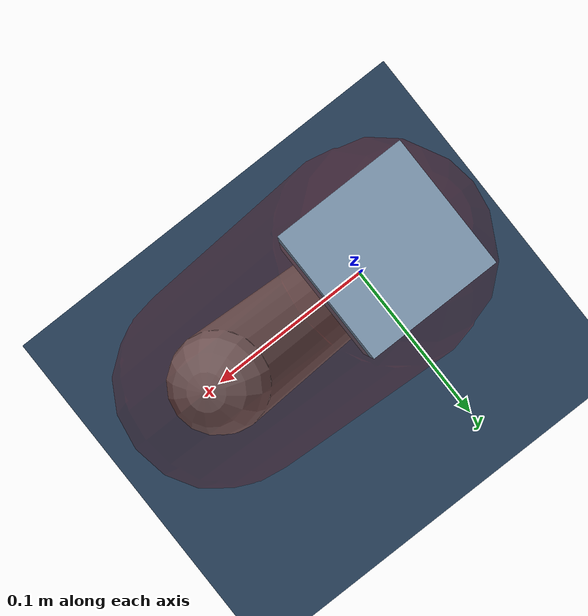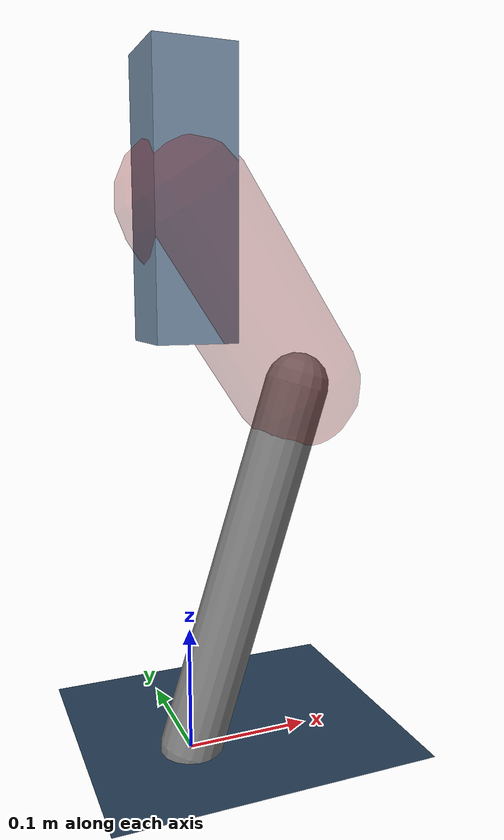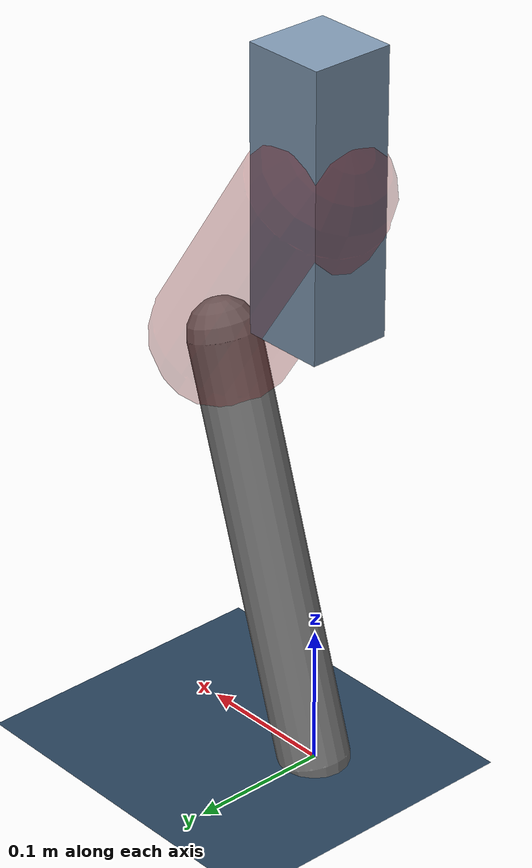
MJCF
<mujoco model="Hopper2D">
	<compiler inertiafromgeom="true" angle="radian" />
	<option timestep="0.001" integrator="implicit" cone="elliptic" solver="Newton" tolerance="1e-10" />

	<default>
		<geom contype="1" conaffinity="1" condim="3" friction="2 0.005 0.0001" solref="0.005 1" />
		<joint limited="true" damping="0.1" />
	</default>

	<asset>
		<texture name="skybox" type="skybox" builtin="gradient" rgb1=".4 .6 .8" rgb2="0 0 0" width="800" height="800" />
		<texture name="grid" type="2d" builtin="checker" rgb1=".1 .2 .3" rgb2=".2 .3 .4" width="300" height="300" mark="edge" markrgb=".2 .3 .4" />
		<material name="ground" texture="grid" texrepeat="1 1" texuniform="true" reflectance="0.1" />
		<material name="leg" rgba="0.5 0.6 0.7 1" />
	</asset>

	<worldbody>

		<geom name="floor" type="plane" size="5 5 0.25" material="ground" />

		<light directional="false" diffuse="0.8 0.8 0.8" specular="0.3 0.3 0.3" pos="0 0 2" dir="0 0 -1" />
		<light mode="targetbodycom" target="base" directional="false" diffuse="0.8 0.8 0.8" specular="0.3 0.3 0.3" pos="0 0 2" dir="0 0 -1" />

		<camera name="fixed" pos="0 -2 1" xyaxes="1 0 0 0 0 1" />
		<camera name="tracking" mode="trackcom" pos="0 -3 1" />

		<body name="root" pos="0 0 0.4248812305965497">
			<joint name="slide_x" type="slide" axis="1 0 0" range="-100 100" />
			<joint name="slide_z" type="slide" axis="0 0 1" range="0 10" />

			<body name="base" pos="0 0 0">
				<geom name="torso" type="box" size="0.03 0.03 0.1" mass="2.508" material="leg" />

				<body name="link1" pos="0 0 0" euler="0 0.981763436570761 0">
					<joint type="hinge" axis="0 -1 0" pos="0 0 0" name="hinge1" limited="true" range="-3.14 3.14" stiffness="0" damping="0.1" />
					<geom name="thigh" type="capsule" fromto="0 0 0 0.16247886599655248 0 0" size="0.05" rgba="0.5 0 0 0.3" mass="0.638249278391726" />

					<body name="link2" pos="0.16247886599655248 0 0" euler="0 0.8910024213495001 0">
						<joint type="hinge" axis="0 -1 0" pos="0 0 0" name="hinge2" limited="true" range="-3.14 3.14" stiffness="0" damping="0.1" />
						<geom name="shank" type="capsule" fromto="0 0 0 0.3035169222428648 0 0" size="0.025" mass="0.4863135377942919" />

					</body>
				</body>
			</body>
		</body>
	</worldbody>

	<actuator>
		<motor name="torque1" joint="hinge1" ctrlrange="-43.173573582831295 43.173573582831295" ctrllimited="true" gear="1" />
		<motor name="torque2" joint="hinge2" ctrlrange="-139.62921766018943 139.62921766018943" ctrllimited="true" gear="1" />
	</actuator>
</mujoco>
